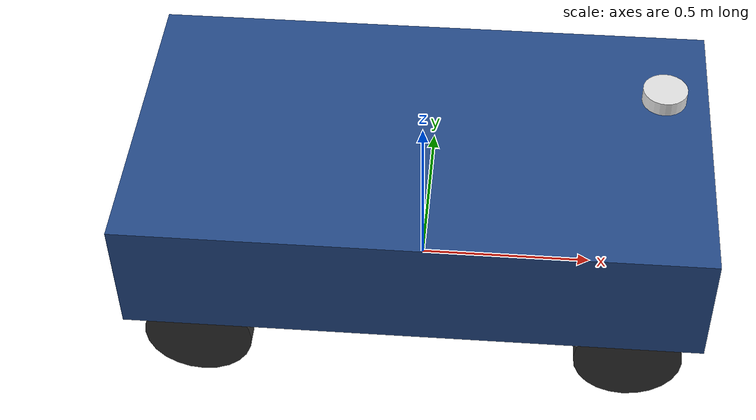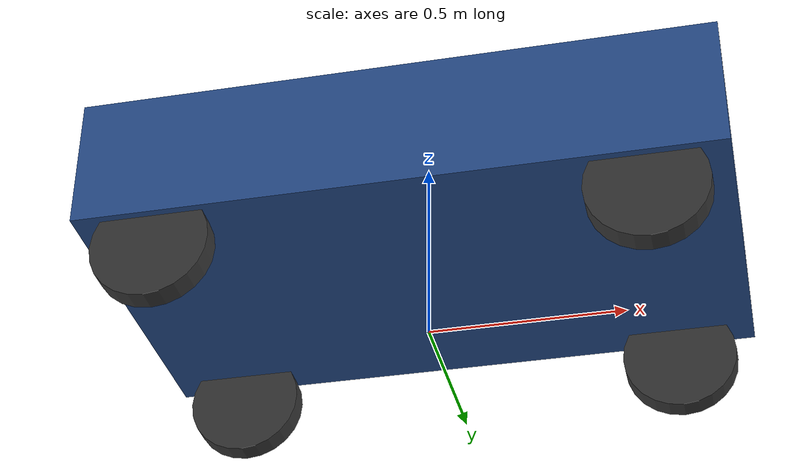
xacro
<?xml version="1.0"?>
<robot xmlns:xacro="http://www.ros.org/wiki/xacro" name="ackermann_rover">

  <!-- ==================== Properties ======================== -->
  <xacro:property name="PI" value="3.14159265358979"/>
  <xacro:property name="wheel_radius" value="0.15"/>
  <xacro:property name="wheel_width" value="0.06"/>
  <xacro:property name="wheelbase" value="1.2"/>
  <xacro:property name="front_track" value="0.8"/>
  <xacro:property name="rear_track" value="0.8"/>
  <xacro:property name="chassis_length" value="1.6"/>
  <xacro:property name="chassis_width" value="0.9"/>
  <xacro:property name="chassis_height" value="0.35"/>
  <xacro:property name="chassis_mass" value="40.0"/>
  <xacro:property name="wheel_mass" value="2.5"/>

  <!-- ==================== Materials ========================= -->
  <material name="body_blue"><color rgba="0.15 0.30 0.55 1.0"/></material>
  <material name="dark_grey"><color rgba="0.2 0.2 0.2 1.0"/></material>
  <material name="silver"><color rgba="0.7 0.7 0.7 1.0"/></material>
  <material name="yellow"><color rgba="0.9 0.8 0.1 1.0"/></material>
  <material name="red"><color rgba="0.9 0.1 0.1 1.0"/></material>
  <material name="lidar_white"><color rgba="0.9 0.9 0.9 1.0"/></material>

  <!-- ==================== base_footprint ==================== -->
  <link name="base_footprint">
    <visual><geometry><box size="0.001 0.001 0.001"/></geometry></visual>
  </link>

  <joint name="base_footprint_joint" type="fixed">
    <parent link="base_footprint"/>
    <child link="base_link"/>
    <origin xyz="0 0 ${wheel_radius}" rpy="0 0 0"/>
  </joint>

  <!-- ==================== base_link (chassis) =============== -->
  <link name="base_link">
    <inertial>
      <mass value="${chassis_mass}"/>
      <origin xyz="0 0 ${chassis_height/2}" rpy="0 0 0"/>
      <inertia
        ixx="${chassis_mass/12*(chassis_width**2 + chassis_height**2)}" ixy="0" ixz="0"
        iyy="${chassis_mass/12*(chassis_length**2 + chassis_height**2)}" iyz="0"
        izz="${chassis_mass/12*(chassis_length**2 + chassis_width**2)}"/>
    </inertial>
    <visual>
      <origin xyz="0 0 ${chassis_height/2}" rpy="0 0 0"/>
      <geometry><box size="${chassis_length} ${chassis_width} ${chassis_height}"/></geometry>
      <material name="body_blue"/>
    </visual>
    <collision>
      <origin xyz="0 0 ${chassis_height/2}" rpy="0 0 0"/>
      <geometry><box size="${chassis_length} ${chassis_width} ${chassis_height}"/></geometry>
    </collision>
  </link>

  <!-- ==================== Ackermann Wheel Macro ============= -->
  <xacro:macro name="ackermann_wheel" params="prefix x y z is_front">
    <link name="${prefix}_wheel_link">
      <inertial>
        <mass value="${wheel_mass}"/>
        <origin xyz="0 0 0" rpy="${PI/2} 0 0"/>
        <inertia
          ixx="${wheel_mass/12*(3*wheel_radius**2+wheel_width**2)}" ixy="0" ixz="0"
          iyy="${wheel_mass/12*(3*wheel_radius**2+wheel_width**2)}" iyz="0"
          izz="${wheel_mass/2*wheel_radius**2}"/>
      </inertial>
      <visual>
        <origin xyz="0 0 0" rpy="${PI/2} 0 0"/>
        <geometry><cylinder radius="${wheel_radius}" length="${wheel_width}"/></geometry>
        <material name="dark_grey"/>
      </visual>
      <collision>
        <origin xyz="0 0 0" rpy="${PI/2} 0 0"/>
        <geometry><cylinder radius="${wheel_radius}" length="${wheel_width}"/></geometry>
      </collision>
    </link>

    <joint name="${prefix}_wheel_joint" type="continuous">
      <parent link="base_link"/>
      <child link="${prefix}_wheel_link"/>
      <origin xyz="${x} ${y} ${z}" rpy="0 0 0"/>
      <axis xyz="0 1 0"/>
      <dynamics damping="0.5" friction="0.8"/>
      <limit effort="100" velocity="50"/>
    </joint>
  </xacro:macro>

  <xacro:macro name="steering_wheel" params="prefix x y z">
    <link name="${prefix}_wheel_link">
      <inertial>
        <mass value="${wheel_mass}"/>
        <origin xyz="0 0 0" rpy="${PI/2} 0 0"/>
        <inertia
          ixx="${wheel_mass/12*(3*wheel_radius**2+wheel_width**2)}" ixy="0" ixz="0"
          iyy="${wheel_mass/12*(3*wheel_radius**2+wheel_width**2)}" iyz="0"
          izz="${wheel_mass/2*wheel_radius**2}"/>
      </inertial>
      <visual>
        <origin xyz="0 0 0" rpy="${PI/2} 0 0"/>
        <geometry><cylinder radius="${wheel_radius}" length="${wheel_width}"/></geometry>
        <material name="dark_grey"/>
      </visual>
      <collision>
        <origin xyz="0 0 0" rpy="${PI/2} 0 0"/>
        <geometry><cylinder radius="${wheel_radius}" length="${wheel_width}"/></geometry>
      </collision>
    </link>

    <!-- Steering axis (vertical Z) -->
    <joint name="${prefix}_steering_joint" type="revolute">
      <parent link="base_link"/>
      <child link="${prefix}_steering_knuckle"/>
      <origin xyz="${x} ${y} ${z}" rpy="0 0 0"/>
      <axis xyz="0 0 1"/>
      <limit lower="${-PI*30/180}" upper="${PI*30/180}" effort="20" velocity="5"/>
    </joint>

    <link name="${prefix}_steering_knuckle">
      <visual><origin xyz="0 0 0" rpy="0 0 0"/><geometry><box size="0.04 0.04 0.04"/></geometry><material name="silver"/></visual>
    </link>

    <!-- Wheel rotation joint -->
    <joint name="${prefix}_wheel_joint" type="continuous">
      <parent link="${prefix}_steering_knuckle"/>
      <child link="${prefix}_wheel_link"/>
      <origin xyz="0 0 0" rpy="0 0 0"/>
      <axis xyz="0 1 0"/>
      <dynamics damping="0.5" friction="0.8"/>
      <limit effort="100" velocity="50"/>
    </joint>
  </xacro:macro>

  <!-- ==================== Rear Wheels (fixed) =============== -->
  <xacro:ackermann_wheel prefix="rl" x="${-wheelbase/2}" y="${rear_track/2}" z="${-wheel_radius/2}" is_front="false"/>
  <xacro:ackermann_wheel prefix="rr" x="${-wheelbase/2}" y="${-rear_track/2}" z="${-wheel_radius/2}" is_front="false"/>

  <!-- ==================== Front Wheels (steering) =========== -->
  <xacro:steering_wheel prefix="fl" x="${wheelbase/2}" y="${front_track/2}" z="${-wheel_radius/2}"/>
  <xacro:steering_wheel prefix="fr" x="${wheelbase/2}" y="${-front_track/2}" z="${-wheel_radius/2}"/>

  <!-- ==================== LiDAR Sensor ========================= -->
  <link name="lidar_link">
    <inertial>
      <mass value="0.2"/>
      <origin xyz="0 0 0" rpy="0 0 0"/>
      <inertia ixx="0.0005" ixy="0" ixz="0" iyy="0.0005" iyz="0" izz="0.0005"/>
    </inertial>
    <visual>
      <origin xyz="0 0 0" rpy="0 0 0"/>
      <geometry><cylinder radius="0.06" length="0.04"/></geometry>
      <material name="lidar_white"/>
    </visual>
  </link>

  <joint name="lidar_joint" type="fixed">
    <parent link="base_link"/>
    <child link="lidar_link"/>
    <origin xyz="${chassis_length/2 - 0.15} 0 ${chassis_height + wheel_radius + 0.03}" rpy="0 0 0"/>
  </joint>

  <!-- ==================== IMU Sensor ============================ -->
  <link name="imu_link">
    <inertial>
      <mass value="0.01"/>
      <origin xyz="0 0 0" rpy="0 0 0"/>
      <inertia ixx="1e-6" ixy="0" ixz="0" iyy="1e-6" iyz="0" izz="1e-6"/>
    </inertial>
    <visual>
      <origin xyz="0 0 0" rpy="0 0 0"/>
      <geometry><box size="0.03 0.03 0.01"/></geometry>
      <material name="yellow"/>
    </visual>
  </link>

  <joint name="imu_joint" type="fixed">
    <parent link="base_link"/>
    <child link="imu_link"/>
    <origin xyz="0 0 ${wheel_radius + chassis_height/2}" rpy="0 0 0"/>
  </joint>

</robot>
